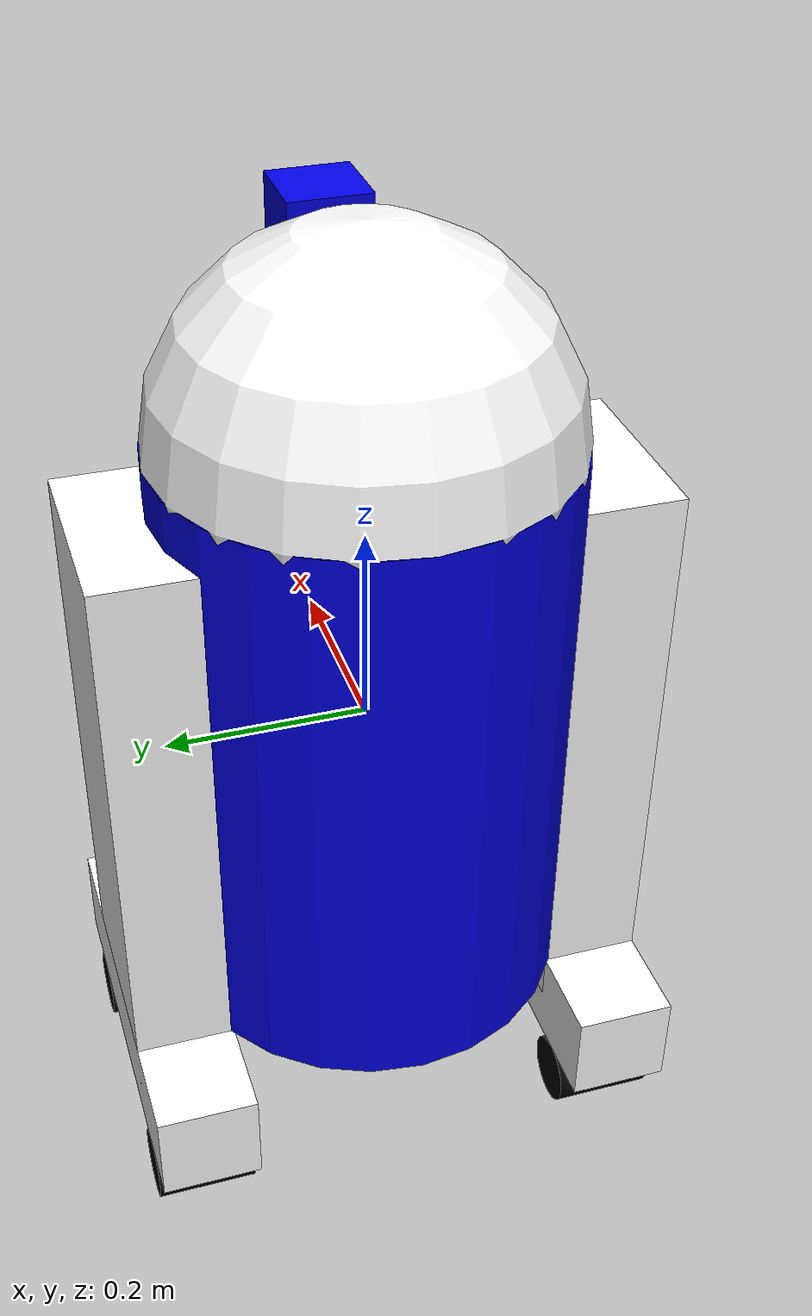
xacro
<?xml version="1.0"?>
<robot name="gazebo_robot" xmlns:xacro="http://ros.org/wiki/xacro">

	<xacro:property name="width" value="0.2" />
	<xacro:property name="leglen" value="0.6"/>
	<xacro:property name="polelen" value="0.2"/>
	<xacro:property name="bodylen" value="0.6"/>
	<xacro:property name="baselen" value="0.4"/>
	<xacro:property name="wheeldiam" value="0.07"/>
	<xacro:property name="pi" value="3.141592"/>

	<material name="blue">
		<color rgba="0 0 0.9 1"/>
	</material>

	<material name="black">
		<color rgba="0 0 0 1"/>
	</material>

	<material name="white">
		<color rgba="1 1 1 1"/>
	</material>

	<xacro:macro name="default_inertial" params="mass">
		<inertial>
			<mass value="${mass}" />
			<inertia ixx="1.0" ixy="0.0" ixz="0.0" iyy="1.0" iyz="0.0" izz="1.0" />
		</inertial>
	</xacro:macro>

	<link name="base_link">
		<visual>
			<geometry>
				<cylinder radius="${width}" length="${bodylen}"/>
			</geometry>
			<material name="blue"/>
		</visual>
		<collision>
			<geometry>
				<cylinder radius="${width}" length="${bodylen}"/>
			</geometry>
		</collision>
		<xacro:default_inertial mass="10"/>
	</link>

	<xacro:macro name="wheel" params="prefix suffix reflect">
		<link name="${prefix}_${suffix}_wheel">
			<visual>
				<origin xyz="0 0 0" rpy="${pi/2} 0 0"/>
				<geometry>
					<cylinder radius="${wheeldiam/2}" length="0.1"/>
				</geometry>
				<material name="black"/>
			</visual>
			<collision>
				<origin xyz="0 0 0" rpy="${pi/2} 0 0"/>
				<geometry>
					<cylinder radius="${wheeldiam/2}" length="0.1"/>
				</geometry>
			</collision>
			<xacro:default_inertial mass="1.0"/>
		</link>

		<joint name="${prefix}_${suffix}_wheel_joint" type="continuous">
			<axis xyz="0 1 0" rpy="0 0 0"/>
			<parent link="${prefix}_base"/>
			<child  link="${prefix}_${suffix}_wheel"/>
			<origin xyz="${baselen*reflect/3} 0 -${wheeldiam/2+0.05}" rpy="0 0 0"/>
		</joint>
	</xacro:macro>

	<xacro:macro name="leg" params="prefix reflect">
		<link name="${prefix}_leg">
			<visual>
				<geometry>
					<box size="${leglen} 0.1 0.2"/>
				</geometry>
				<origin xyz="0 0 -${leglen/2}" rpy="0 ${pi/2} 0"/>
				<material name="white"/>
			</visual>
			<collision>
				<geometry>
					<box size="${leglen} 0.1 0.2"/>
				</geometry>
				<origin xyz="0 0 -${leglen/2}" rpy="0 ${pi/2} 0"/>
			</collision>
			<xacro:default_inertial mass="10"/>
		</link>

		<joint name="base_to_${prefix}_leg" type="fixed">
			<parent link="base_link"/>
			<child  link="${prefix}_leg"/>
			<origin xyz="0 ${reflect*(width+.02)} 0.25"/>
		</joint>

		<link name="${prefix}_base">
			<visual>
				<geometry>
					<box size="${baselen} 0.1 0.1"/>
				</geometry>
				<material name="white"/>
			</visual>
			<collision>
				<geometry>
					<box size="${baselen} 0.1 0.1"/>
				</geometry>
			</collision>
			<xacro:default_inertial mass="10"/>
		</link>

		<joint name="${prefix}_base_joint" type="fixed">
			<parent link="${prefix}_leg"/>
			<child  link="${prefix}_base"/>
			<origin xyz="0 0 ${-leglen}"/>
		</joint>
		<xacro:wheel prefix="${prefix}" suffix="front" reflect="1"/>
		<xacro:wheel prefix="${prefix}" suffix="back" reflect="-1"/>
	</xacro:macro>
	<xacro:leg prefix="right" reflect="-1"/>
	<xacro:leg prefix="left" reflect="1"/>

	<joint name="gripper_extension" type="prismatic">
		<parent link="base_link"/>
		<child  link="gripper_pole"/>
		<limit effort="1000" lower="-${width*2-.02}" upper="0" velocity="0.5"/>
		<origin rpy="0 0 0" xyz="${width-.01} 0 0.2"/>
	</joint>

	<link name="gripper_pole">
		<visual>
			<geometry>
				<cylinder length="${polelen}" radius="0.01"/>
			</geometry>
			<origin xyz="${polelen/2} 0 0" rpy="0 ${pi/2} 0" />
		</visual>
		<collision>
			<geometry>
				<cylinder length="${polelen}" radius="0.01"/>
			</geometry>
			<origin xyz="${polelen/2} 0 0" rpy="0 ${pi/2} 0" />
		</collision>
		<xacro:default_inertial mass="0.05"/>
	</link>

	<transmission name="gripper_extension_trans" type="SimpleTransmission">
		<type>transmission_interface/SimpleTransmission</type>
			<actuator name="gripper_extension_motor">
				<hardwareInterface>PositionJointInterface</hardwareInterface>
				<mechanicalReduction>1</mechanicalReduction>
			</actuator>
			<joint name="gripper_extension">
				<hardwareInterface>PositionJointInterface</hardwareInterface>
			</joint>
	</transmission>

	<xacro:macro name="gripper" params="prefix reflect">
		<joint name="${prefix}_gripper_joint" type="revolute">
			<axis xyz="0 0 ${reflect}"/>
			<limit effort="1000" lower="0.0" upper="0.548" velocity="0.5"/>
			<origin rpy="0 0 0" xyp="${polelen} ${reflect*0.01} 0"/>
			<parent link="gripper_pole"/>
			<child  link="${prefix}_gripper"/>
		</joint>
		<link name="${prefix}_gripper">
			<visual>
				<origin rpy="${(reflect-1)/2*pi} 0 0" xyz="0 0 0"/>
				<geometry>
					<mesh filename="package://urdf_tutorial/meshes/l_finger.dae"/>
				</geometry>
			</visual>
			<collision>
				<origin rpy="${(reflect-1)/2*pi} 0 0" xyz="0 0 0"/>
				<geometry>
					<mesh filename="package://urdf_tutorial/meshes/l_finger.dae"/>
				</geometry>
			</collision>
			<xacro:default_inertial mass="0.05"/>
		</link>

		<transmission name="${prefix}_gripper_trans" type="SimpleTransmission">
			<type>transmission_interface/SimpleTransmission</type>
				<actuator name="${prefix}_gripper_motor">
					<mechanicalReduction>1</mechanicalReduction>
					<hardwareInterface>PositionJointInterface</hardwareInterface>
				</actuator>
			<joint name="${prefix}_gripper_joint">
				<hardwareInterface>PositionJointInterface</hardwareInterface>
			</joint>
		</transmission>

		<joint name="${prefix}_tip_joint" type="fixed">
			<parent link="${prefix}_gripper"/>
			<child  link="${prefix}_tip"/>
		</joint>
		<link name="${prefix}_tip">
			<visual>
				<origin rpy="${(reflect-1)/2*pi} 0 0" xyz="0.09137 0.00495 0"/>
				<geometry>
					<mesh filename="package://urdf_tutorial/meshes/l_finger_tip.dae"/>
				</geometry>
			</visual>
			<collision>
				<origin rpy="${(reflect-1)/2*pi} 0 0" xyz="0.09137 0.00495 0"/>
				<geometry>
					<mesh filename="package://urdf_tutorial/meshes/l_finger_tip.dae"/>
				</geometry>
			</collision>
			<xacro:default_inertial mass="0.05"/>
		</link>
	</xacro:macro>

	<xacro:gripper prefix="left" reflect="1"/>
	<xacro:gripper prefix="right" reflect="-1"/>

	<link name="head">
		<visual>
			<geometry>
				<sphere radius="${width}"/>
			</geometry>
			<material name="white"/>
		</visual>
		<collision>
			<geometry>
				<sphere radius="${width}"/>
			</geometry>
		</collision>
		<xacro:default_inertial mass="2"/>
	</link>

	<joint name="head_swivel" type="continuous">
		<parent link="base_link"/>
		<child  link="head"/>
		<axis xyz="0 0 1"/>
		<origin xyz="0 0 ${bodylen/2}"/>
		<limit effort="30" velocity="1.0"/>
	</joint>

	<link name="box">
		<visual>
			<geometry>
				<box size="0.08 0.08 0.08"/>
			</geometry>
			<material name="blue"/>
			<origin xyz="-0.04 0 0"/>
		</visual>
		<collision>
			<origin xyz="-0.04 0 0"/>
			<geometry>
				<box size="0.08 0.08 0.08"/>
			</geometry>
		</collision>
		<xacro:default_inertial mass="1"/>
	</link>

	<joint name="tobox" type="fixed">
		<parent link="head"/>
		<child  link="box"/>
		<origin xyz="${.707*width+0.04} 0 ${.707*width}"/>
	</joint>

	<!--Gazebo plugin for ROS Control -->
	<!--Joint state publisher in Gazebo-->
	<!--Connection between ROS and gazebo-->
	<gazebo>
		<plugin name="gazebo_ros_control" filename="libgazebo_ros_control.so">
			<robotNameSpace>/</robotNameSpace>
		</plugin>
	</gazebo>

	<!-- This block connects head_swivel joint and an actuator -->
	<!-- Joint state publishing config!!! -->
	<transmission name="head_swivel_trans">
		<type>transmission_interface/SImpleTransmission</type>
		<actuator name="$head_swivel_motor">
			<mechanicalReduction>1</mechanicalReduction>
		</actuator>
		<!-- This joint name must be much previous joint name-->
		<joint name="head_swivel">
			<hardwareInterface>PositionJointInterface</hardwareInterface>
		</joint>
	</transmission>

</robot>
